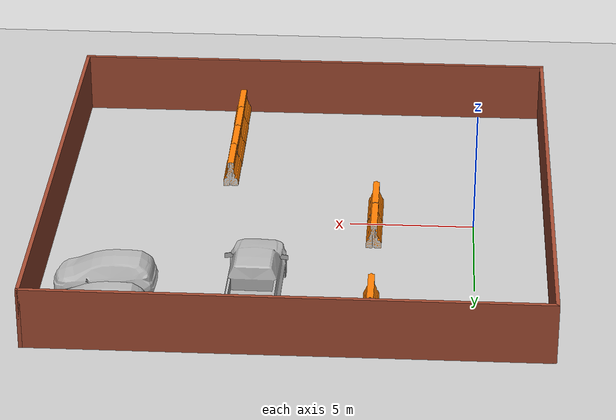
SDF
<sdf version="1.7">
 <world name="default">
  <light name="sun" type="directional">
   <pose>0 0 10 0 -0 0</pose>
   <diffuse>0.8 0.8 0.8 1</diffuse>
   <specular>0.2 0.2 0.2 1</specular>
   <attenuation>
    <range>1000</range>
    <constant>0.9</constant>
    <linear>0.01</linear>
    <quadratic>0.001</quadratic>
   </attenuation>
   <direction>-0.5 0.1 -0.9</direction>
   <spot><inner_angle>0</inner_angle><outer_angle>0</outer_angle><falloff>0</falloff></spot>
  </light>
  <model name="ground_plane">
   <static>1</static>
   <link name="link">
    <collision name="collision">
     <geometry><plane><normal>0 0 1</normal><size>100 100</size></plane></geometry>
     <surface>
      <contact><collide_bitmask>65535</collide_bitmask></contact>
      <friction><ode><mu>100</mu><mu2>50</mu2></ode></friction>
     </surface>
    </collision>
    <visual name="visual">
     <cast_shadows>0</cast_shadows>
     <geometry><plane><normal>0 0 1</normal><size>100 100</size></plane></geometry>
     <material>
      <script><uri>file://media/materials/scripts/gazebo.material</uri><name>Gazebo/Grey</name></script>
     </material>
    </visual>
   </link>
  </model>
  <gravity>0 0 -9.8</gravity>
  <magnetic_field>6e-06 2.3e-05 -4.2e-05</magnetic_field>
  <atmosphere type="adiabatic"/>
  <physics type="ode">
   <max_step_size>0.001</max_step_size>
   <real_time_factor>1</real_time_factor>
   <real_time_update_rate>1000</real_time_update_rate>
  </physics>
  <scene><ambient>0.4 0.4 0.4 1</ambient><background>0.7 0.7 0.7 1</background><shadows>1</shadows></scene>
  <spherical_coordinates>
   <surface_model>EARTH_WGS84</surface_model>
   <latitude_deg>0</latitude_deg>
   <longitude_deg>0</longitude_deg>
   <elevation>0</elevation>
   <heading_deg>0</heading_deg>
  </spherical_coordinates>
  <model name="drc_practice_organge_jersey_barrier">
   <static>1</static>
   <link name="link">
    <visual name="visual">
     <geometry>
      <mesh><uri>model://drc_practice_orange_jersey_barrier/meshes/jersey_barrier.dae</uri></mesh>
     </geometry>
    </visual>
    <collision name="collision">
     <geometry>
      <mesh><uri>model://drc_practice_orange_jersey_barrier/meshes/jersey_barrier.dae</uri></mesh>
     </geometry>
    </collision>
   </link>
   <pose>4 1 0 0 -0 0</pose>
  </model>
  <model name="drc_practice_organge_jersey_barrier_0">
   <static>1</static>
   <link name="link">
    <visual name="visual">
     <geometry>
      <mesh><uri>model://drc_practice_orange_jersey_barrier/meshes/jersey_barrier.dae</uri></mesh>
     </geometry>
    </visual>
    <collision name="collision">
     <geometry>
      <mesh><uri>model://drc_practice_orange_jersey_barrier/meshes/jersey_barrier.dae</uri></mesh>
     </geometry>
    </collision>
   </link>
   <pose>4 -0.8 0 0 -0 0</pose>
  </model>
  <model name="wall2x2">
   <pose>7 0 0 0 -0 0</pose>
   <link name="Wall_10">
    <collision name="Wall_10_Collision">
     <geometry><box><size>20 0.15 2.5</size></box></geometry>
     <pose>0 0 1.25 0 -0 0</pose>
    </collision>
    <visual name="Wall_10_Visual">
     <pose>0 0 1.25 0 -0 0</pose>
     <geometry><box><size>20 0.15 2.5</size></box></geometry>
     <material>
      <script><uri>file://media/materials/scripts/gazebo.material</uri><name>Gazebo/Bricks</name></script>
      <ambient>1 1 1 1</ambient>
     </material>
     <meta><layer>0</layer></meta>
    </visual>
    <pose>-0 -9.925 0 0 -0 3.14159</pose>
   </link>
   <link name="Wall_11">
    <collision name="Wall_11_Collision">
     <geometry><box><size>20 0.15 2.5</size></box></geometry>
     <pose>0 0 1.25 0 -0 0</pose>
    </collision>
    <visual name="Wall_11_Visual">
     <pose>0 0 1.25 0 -0 0</pose>
     <geometry><box><size>20 0.15 2.5</size></box></geometry>
     <material>
      <script><uri>file://media/materials/scripts/gazebo.material</uri><name>Gazebo/Bricks</name></script>
      <ambient>1 1 1 1</ambient>
     </material>
     <meta><layer>0</layer></meta>
    </visual>
    <pose>-9.925 -0 0 0 -0 1.5708</pose>
   </link>
   <link name="Wall_8">
    <collision name="Wall_8_Collision">
     <geometry><box><size>20 0.15 2.5</size></box></geometry>
     <pose>0 0 1.25 0 -0 0</pose>
    </collision>
    <visual name="Wall_8_Visual">
     <pose>0 0 1.25 0 -0 0</pose>
     <geometry><box><size>20 0.15 2.5</size></box></geometry>
     <material>
      <script><uri>file://media/materials/scripts/gazebo.material</uri><name>Gazebo/Bricks</name></script>
      <ambient>1 1 1 1</ambient>
     </material>
     <meta><layer>0</layer></meta>
    </visual>
    <pose>-0 9.925 0 0 -0 0</pose>
   </link>
   <link name="Wall_9">
    <collision name="Wall_9_Collision">
     <geometry><box><size>20 0.15 2.5</size></box></geometry>
     <pose>0 0 1.25 0 -0 0</pose>
    </collision>
    <visual name="Wall_9_Visual">
     <pose>0 0 1.25 0 -0 0</pose>
     <geometry><box><size>20 0.15 2.5</size></box></geometry>
     <material>
      <script><uri>file://media/materials/scripts/gazebo.material</uri><name>Gazebo/Bricks</name></script>
      <ambient>1 1 1 1</ambient>
     </material>
     <meta><layer>0</layer></meta>
    </visual>
    <pose>9.925 -0 0 0 -0 -1.5708</pose>
   </link>
   <static>1</static>
  </model>
  <model name="pickup">
   <static>1</static>
   <link name="link">
    <collision name="collision">
     <pose>0 0 0 0 0 -1.5708</pose>
     <geometry><mesh><uri>model://pickup/meshes/pickup.dae</uri></mesh></geometry>
    </collision>
    <visual name="visual">
     <pose>0 0 0 0 0 -1.5708</pose>
     <geometry><mesh><uri>model://pickup/meshes/pickup.dae</uri></mesh></geometry>
    </visual>
   </link>
   <pose>8.46344 6.00215 0 0 0 -1.59004</pose>
  </model>
  <model name="hatchback">
   <static>1</static>
   <link name="link">
    <collision name="collision">
     <pose>0 0 0 0 -0 1.5708</pose>
     <geometry>
      <mesh><scale>0.0254 0.0254 0.0254</scale><uri>model://hatchback/meshes/hatchback.obj</uri></mesh>
     </geometry>
    </collision>
    <visual name="visual">
     <pose>0 0 0 0 -0 1.5708</pose>
     <geometry>
      <mesh><scale>0.0254 0.0254 0.0254</scale><uri>model://hatchback/meshes/hatchback.obj</uri></mesh>
     </geometry>
    </visual>
   </link>
   <pose>13.9019 5.7199 0 0 -0 0</pose>
  </model>
  <model name="hatchback_0">
   <static>1</static>
   <link name="link">
    <collision name="collision">
     <pose>0 0 0 0 -0 1.5708</pose>
     <geometry>
      <mesh><scale>0.0254 0.0254 0.0254</scale><uri>model://hatchback/meshes/hatchback.obj</uri></mesh>
     </geometry>
    </collision>
    <visual name="visual">
     <pose>0 0 0 0 -0 1.5708</pose>
     <geometry>
      <mesh><scale>0.0254 0.0254 0.0254</scale><uri>model://hatchback/meshes/hatchback.obj</uri></mesh>
     </geometry>
    </visual>
   </link>
   <pose>13.9882 8.13829 0 0 -0 0</pose>
  </model>
  <model name="drc_practice_organge_jersey_barrier_clone">
   <static>1</static>
   <link name="link">
    <visual name="visual">
     <geometry>
      <mesh><uri>model://drc_practice_orange_jersey_barrier/meshes/jersey_barrier.dae</uri></mesh>
     </geometry>
    </visual>
    <collision name="collision">
     <geometry>
      <mesh><uri>model://drc_practice_orange_jersey_barrier/meshes/jersey_barrier.dae</uri></mesh>
     </geometry>
    </collision>
   </link>
   <pose>3.99678 8.39115 0 0 -0 0</pose>
  </model>
  <model name="drc_practice_organge_jersey_barrier_clone_0">
   <static>1</static>
   <link name="link">
    <visual name="visual">
     <geometry>
      <mesh><uri>model://drc_practice_orange_jersey_barrier/meshes/jersey_barrier.dae</uri></mesh>
     </geometry>
    </visual>
    <collision name="collision">
     <geometry>
      <mesh><uri>model://drc_practice_orange_jersey_barrier/meshes/jersey_barrier.dae</uri></mesh>
     </geometry>
    </collision>
   </link>
   <pose>3.98211 6.60058 0 0 -0 0</pose>
  </model>
  <model name="drc_practice_organge_jersey_barrier_clone_0_clone">
   <static>1</static>
   <link name="link">
    <visual name="visual">
     <geometry>
      <mesh><uri>model://drc_practice_orange_jersey_barrier/meshes/jersey_barrier.dae</uri></mesh>
     </geometry>
    </visual>
    <collision name="collision">
     <geometry>
      <mesh><uri>model://drc_practice_orange_jersey_barrier/meshes/jersey_barrier.dae</uri></mesh>
     </geometry>
    </collision>
   </link>
   <pose>10.0851 -9.04845 0 0 -0 0</pose>
  </model>
  <model name="drc_practice_organge_jersey_barrier_clone_0_clone_0">
   <static>1</static>
   <link name="link">
    <visual name="visual">
     <geometry>
      <mesh><uri>model://drc_practice_orange_jersey_barrier/meshes/jersey_barrier.dae</uri></mesh>
     </geometry>
    </visual>
    <collision name="collision">
     <geometry>
      <mesh><uri>model://drc_practice_orange_jersey_barrier/meshes/jersey_barrier.dae</uri></mesh>
     </geometry>
    </collision>
   </link>
   <pose>10.0762 -7.27687 0 0 -0 0</pose>
  </model>
  <model name="drc_practice_organge_jersey_barrier_clone_0_clone_1">
   <static>1</static>
   <link name="link">
    <visual name="visual">
     <geometry>
      <mesh><uri>model://drc_practice_orange_jersey_barrier/meshes/jersey_barrier.dae</uri></mesh>
     </geometry>
    </visual>
    <collision name="collision">
     <geometry>
      <mesh><uri>model://drc_practice_orange_jersey_barrier/meshes/jersey_barrier.dae</uri></mesh>
     </geometry>
    </collision>
   </link>
   <pose>10.0847 -5.56751 0 0 -0 0</pose>
  </model>
  <model name="drc_practice_organge_jersey_barrier_clone_0_clone_2">
   <static>1</static>
   <link name="link">
    <visual name="visual">
     <geometry>
      <mesh><uri>model://drc_practice_orange_jersey_barrier/meshes/jersey_barrier.dae</uri></mesh>
     </geometry>
    </visual>
    <collision name="collision">
     <geometry>
      <mesh><uri>model://drc_practice_orange_jersey_barrier/meshes/jersey_barrier.dae</uri></mesh>
     </geometry>
    </collision>
   </link>
   <pose>10.1104 -3.85723 0 0 -0 0</pose>
  </model>
 </world>
</sdf>
